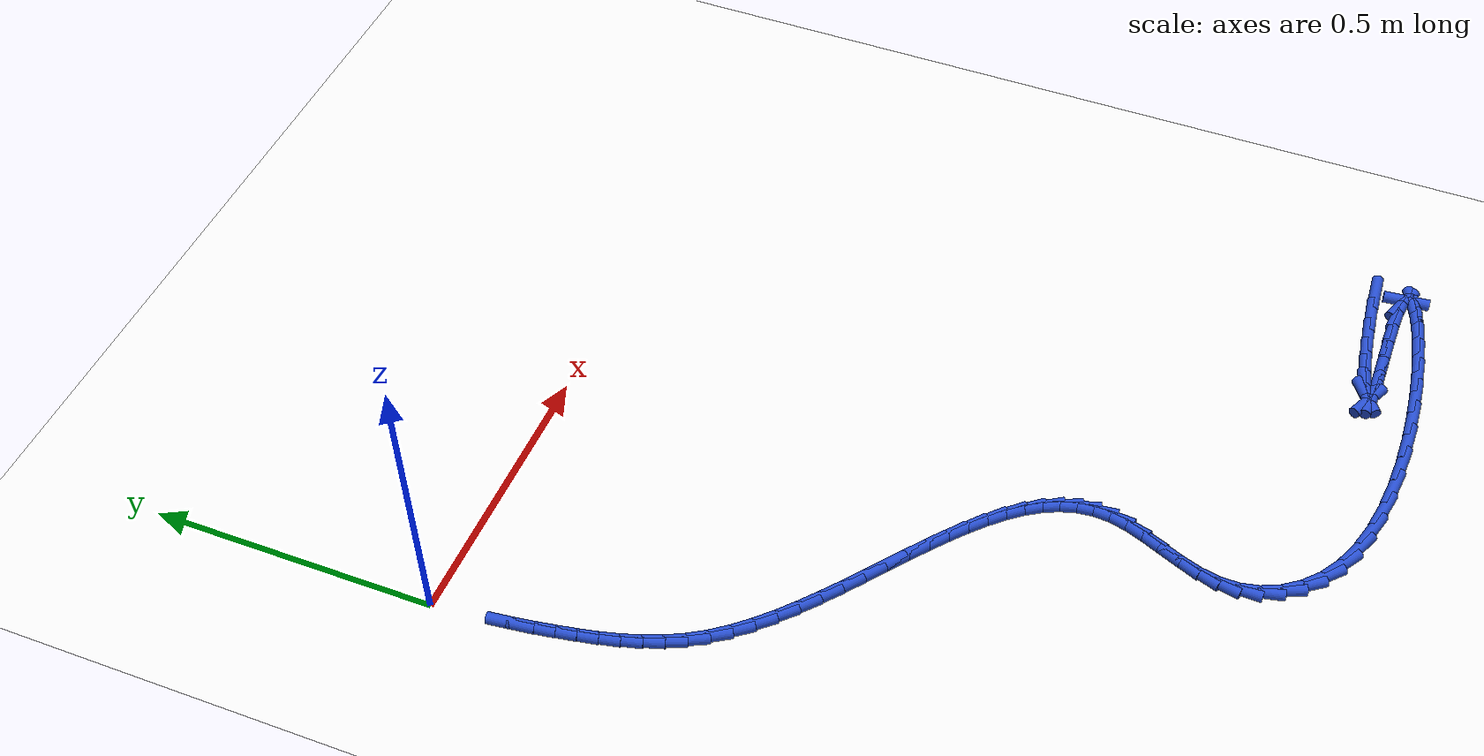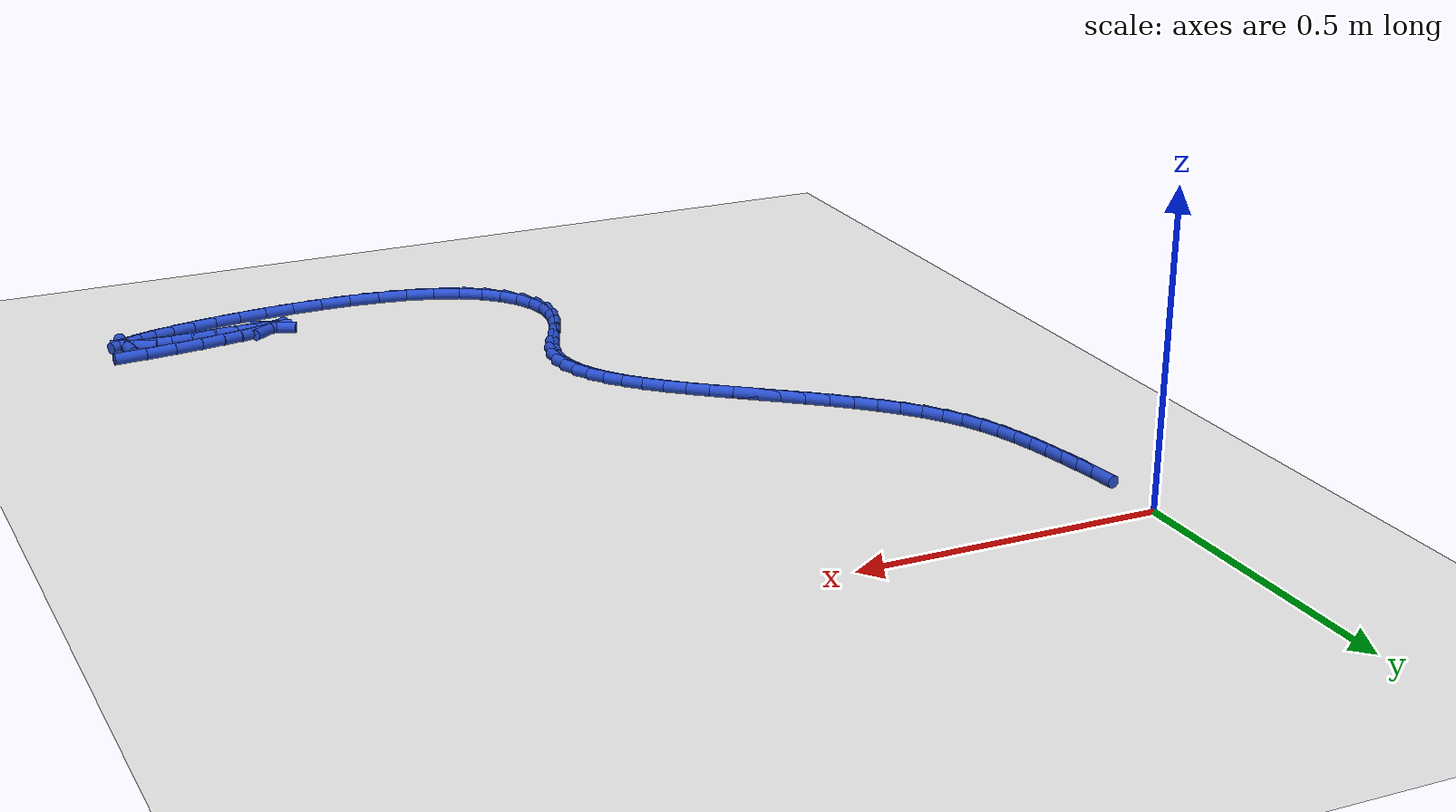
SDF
<sdf version="1.6">
 <world name="default">
  <model name="ground_plane">
   <static>1</static>
   <link name="link">
    <collision name="collision">
     <geometry><plane><normal>0 0 1</normal><size>100 100</size></plane></geometry>
     <surface><friction><ode><mu>100</mu><mu2>50</mu2></ode></friction></surface>
    </collision>
    <visual name="visual">
     <cast_shadows>0</cast_shadows>
     <geometry><plane><normal>0 0 1</normal><size>100 100</size></plane></geometry>
     <material>
      <script><uri>file://media/materials/scripts/gazebo.material</uri><name>Gazebo/WhiteGlow</name></script>
     </material>
    </visual>
   </link>
  </model>
  <model name="line">
   <link name="link_213">
    <pose>1.220874988721453 -1.24283731549988 0.01 0 1.57 0.08131778931943666</pose>
    <collision name="collision">
     <geometry><cylinder><radius>0.01</radius><length>0.08</length></cylinder></geometry>
    </collision>
    <visual name="visual">
     <material>
      <script><name>Gazebo/Blue</name><uri>file://media/materials/scripts/gazebo.material</uri></script>
     </material>
     <geometry><cylinder><radius>0.01</radius><length>0.08</length></cylinder></geometry>
    </visual>
   </link>
   <link name="link_214">
    <pose>1.1660167533138235 -1.2473081248085267 0.01 0 1.57 0.1132822878683919</pose>
    <collision name="collision">
     <geometry><cylinder><radius>0.01</radius><length>0.08</length></cylinder></geometry>
    </collision>
    <visual name="visual">
     <material>
      <script><name>Gazebo/Blue</name><uri>file://media/materials/scripts/gazebo.material</uri></script>
     </material>
     <geometry><cylinder><radius>0.01</radius><length>0.08</length></cylinder></geometry>
    </visual>
   </link>
   <link name="link_215">
    <pose>1.114137619845196 -1.2532103810090196 0.01 0 1.57 0.1440404286201586</pose>
    <collision name="collision">
     <geometry><cylinder><radius>0.01</radius><length>0.08</length></cylinder></geometry>
    </collision>
    <visual name="visual">
     <material>
      <script><name>Gazebo/Blue</name><uri>file://media/materials/scripts/gazebo.material</uri></script>
     </material>
     <geometry><cylinder><radius>0.01</radius><length>0.08</length></cylinder></geometry>
    </visual>
   </link>
   <link name="link_216">
    <pose>1.0672043556969106 -1.260017813136752 0.01 0 1.57 0.17767235977627896</pose>
    <collision name="collision">
     <geometry><cylinder><radius>0.01</radius><length>0.08</length></cylinder></geometry>
    </collision>
    <visual name="visual">
     <material>
      <script><name>Gazebo/Blue</name><uri>file://media/materials/scripts/gazebo.material</uri></script>
     </material>
     <geometry><cylinder><radius>0.01</radius><length>0.08</length></cylinder></geometry>
    </visual>
   </link>
   <link name="link_217">
    <pose>1.027183728250304 -1.2672041502271214 0.01 0 1.57 0.2222982721175687</pose>
    <collision name="collision">
     <geometry><cylinder><radius>0.01</radius><length>0.08</length></cylinder></geometry>
    </collision>
    <visual name="visual">
     <material>
      <script><name>Gazebo/Blue</name><uri>file://media/materials/scripts/gazebo.material</uri></script>
     </material>
     <geometry><cylinder><radius>0.01</radius><length>0.08</length></cylinder></geometry>
    </visual>
   </link>
   <link name="link_218">
    <pose>0.9960425048867168 -1.2742431213155223 0.01 0 1.57 0.30392284036792616</pose>
    <collision name="collision">
     <geometry><cylinder><radius>0.01</radius><length>0.08</length></cylinder></geometry>
    </collision>
    <visual name="visual">
     <material>
      <script><name>Gazebo/Blue</name><uri>file://media/materials/scripts/gazebo.material</uri></script>
     </material>
     <geometry><cylinder><radius>0.01</radius><length>0.08</length></cylinder></geometry>
    </visual>
   </link>
   <link name="link_219">
    <pose>0.9757474529874883 -1.28060845543735 0.01 0 1.57 0.6042335774943872</pose>
    <collision name="collision">
     <geometry><cylinder><radius>0.01</radius><length>0.08</length></cylinder></geometry>
    </collision>
    <visual name="visual">
     <material>
      <script><name>Gazebo/Blue</name><uri>file://media/materials/scripts/gazebo.material</uri></script>
     </material>
     <geometry><cylinder><radius>0.01</radius><length>0.08</length></cylinder></geometry>
    </visual>
   </link>
   <link name="link_220">
    <pose>0.9682653399339578 -1.2857738816279998 0.01 0 1.57 -0.440906104849582</pose>
    <collision name="collision">
     <geometry><cylinder><radius>0.01</radius><length>0.08</length></cylinder></geometry>
    </collision>
    <visual name="visual">
     <material>
      <script><name>Gazebo/Blue</name><uri>file://media/materials/scripts/gazebo.material</uri></script>
     </material>
     <geometry><cylinder><radius>0.01</radius><length>0.08</length></cylinder></geometry>
    </visual>
   </link>
   <link name="link_221">
    <pose>0.9755562301096051 -1.2892143646916583 0.01 0 1.57 -0.0675896060745146</pose>
    <collision name="collision">
     <geometry><cylinder><radius>0.01</radius><length>0.08</length></cylinder></geometry>
    </collision>
    <visual name="visual">
     <material>
      <script><name>Gazebo/Blue</name><uri>file://media/materials/scripts/gazebo.material</uri></script>
     </material>
     <geometry><cylinder><radius>0.01</radius><length>0.08</length></cylinder></geometry>
    </visual>
   </link>
   <link name="link_222">
    <pose>0.9978514177253873 -1.290723586560558 0.01 0 1.57 -0.0033678489611784837</pose>
    <collision name="collision">
     <geometry><cylinder><radius>0.01</radius><length>0.08</length></cylinder></geometry>
    </collision>
    <visual name="visual">
     <material>
      <script><name>Gazebo/Blue</name><uri>file://media/materials/scripts/gazebo.material</uri></script>
     </material>
     <geometry><cylinder><radius>0.01</radius><length>0.08</length></cylinder></geometry>
    </visual>
   </link>
   <link name="link_223">
    <pose>1.0313617314217893 -1.2908364446624236 0.01 0 1.57 0.015939709849880596</pose>
    <collision name="collision">
     <geometry><cylinder><radius>0.01</radius><length>0.08</length></cylinder></geometry>
    </collision>
    <visual name="visual">
     <material>
      <script><name>Gazebo/Blue</name><uri>file://media/materials/scripts/gazebo.material</uri></script>
     </material>
     <geometry><cylinder><radius>0.01</radius><length>0.08</length></cylinder></geometry>
    </visual>
   </link>
   <link name="link_224">
    <pose>1.0717277529339209 -1.2901929674937886 0.01 0 1.57 0.017724298104022766</pose>
    <collision name="collision">
     <geometry><cylinder><radius>0.01</radius><length>0.08</length></cylinder></geometry>
    </collision>
    <visual name="visual">
     <material>
      <script><name>Gazebo/Blue</name><uri>file://media/materials/scripts/gazebo.material</uri></script>
     </material>
     <geometry><cylinder><radius>0.01</radius><length>0.08</length></cylinder></geometry>
    </visual>
   </link>
   <link name="link_225">
    <pose>1.1145900639968915 -1.2894331835511847 0.01 0 1.57 0.005757666323217832</pose>
    <collision name="collision">
     <geometry><cylinder><radius>0.01</radius><length>0.08</length></cylinder></geometry>
    </collision>
    <visual name="visual">
     <material>
      <script><name>Gazebo/Blue</name><uri>file://media/materials/scripts/gazebo.material</uri></script>
     </material>
     <geometry><cylinder><radius>0.01</radius><length>0.08</length></cylinder></geometry>
    </visual>
   </link>
   <link name="link_226">
    <pose>1.1555892463458115 -1.2891971213311448 0.01 0 1.57 -0.026669286408463774</pose>
    <collision name="collision">
     <geometry><cylinder><radius>0.01</radius><length>0.08</length></cylinder></geometry>
    </collision>
    <visual name="visual">
     <material>
      <script><name>Gazebo/Blue</name><uri>file://media/materials/scripts/gazebo.material</uri></script>
     </material>
     <geometry><cylinder><radius>0.01</radius><length>0.08</length></cylinder></geometry>
    </visual>
   </link>
   <link name="link_227">
    <pose>1.19036588171579 -1.2901248093302011 0.01 0 1.57 -0.11137380995772429</pose>
    <collision name="collision">
     <geometry><cylinder><radius>0.01</radius><length>0.08</length></cylinder></geometry>
    </collision>
    <visual name="visual">
     <material>
      <script><name>Gazebo/Blue</name><uri>file://media/materials/scripts/gazebo.material</uri></script>
     </material>
     <geometry><cylinder><radius>0.01</radius><length>0.08</length></cylinder></geometry>
    </visual>
   </link>
   <link name="link_228">
    <pose>1.214645506308491 -1.2928401601046093 0.01 0 1.57 -0.37180535038948553</pose>
    <collision name="collision">
     <geometry><cylinder><radius>0.01</radius><length>0.08</length></cylinder></geometry>
    </collision>
    <visual name="visual">
     <material>
      <script><name>Gazebo/Blue</name><uri>file://media/materials/scripts/gazebo.material</uri></script>
     </material>
     <geometry><cylinder><radius>0.01</radius><length>0.08</length></cylinder></geometry>
    </visual>
   </link>
   <link name="link_229">
    <pose>1.226602240199648 -1.2975025876024218 0.01 0 1.57 -1.4801573033365745</pose>
    <collision name="collision">
     <geometry><cylinder><radius>0.01</radius><length>0.08</length></cylinder></geometry>
    </collision>
    <visual name="visual">
     <material>
      <script><name>Gazebo/Blue</name><uri>file://media/materials/scripts/gazebo.material</uri></script>
     </material>
     <geometry><cylinder><radius>0.01</radius><length>0.08</length></cylinder></geometry>
    </visual>
   </link>
   <link name="link_231">
    <pose>1.2174296451738922 -1.3111843096238152 0.01 0 1.57 0.40962616927655593</pose>
    <collision name="collision">
     <geometry><cylinder><radius>0.01</radius><length>0.08</length></cylinder></geometry>
    </collision>
    <visual name="visual">
     <material>
      <script><name>Gazebo/Blue</name><uri>file://media/materials/scripts/gazebo.material</uri></script>
     </material>
     <geometry><cylinder><radius>0.01</radius><length>0.08</length></cylinder></geometry>
    </visual>
   </link>
   <link name="link_232">
    <pose>1.19846279699756 -1.319419465267473 0.01 0 1.57 0.3085654104358982</pose>
    <collision name="collision">
     <geometry><cylinder><radius>0.01</radius><length>0.08</length></cylinder></geometry>
    </collision>
    <visual name="visual">
     <material>
      <script><name>Gazebo/Blue</name><uri>file://media/materials/scripts/gazebo.material</uri></script>
     </material>
     <geometry><cylinder><radius>0.01</radius><length>0.08</length></cylinder></geometry>
    </visual>
   </link>
   <link name="link_233">
    <pose>1.171350568872644 -1.3280613914131538 0.01 0 1.57 0.2480753416629657</pose>
    <collision name="collision">
     <geometry><cylinder><radius>0.01</radius><length>0.08</length></cylinder></geometry>
    </collision>
    <visual name="visual">
     <material>
      <script><name>Gazebo/Blue</name><uri>file://media/materials/scripts/gazebo.material</uri></script>
     </material>
     <geometry><cylinder><radius>0.01</radius><length>0.08</length></cylinder></geometry>
    </visual>
   </link>
   <link name="link_234">
    <pose>1.1371742011694341 -1.3367180186208982 0.01 0 1.57 0.20331214142457593</pose>
    <collision name="collision">
     <geometry><cylinder><radius>0.01</radius><length>0.08</length></cylinder></geometry>
    </collision>
    <visual name="visual">
     <material>
      <script><name>Gazebo/Blue</name><uri>file://media/materials/scripts/gazebo.material</uri></script>
     </material>
     <geometry><cylinder><radius>0.01</radius><length>0.08</length></cylinder></geometry>
    </visual>
   </link>
   <link name="link_235">
    <pose>1.0970149342582198 -1.3449972774507435 0.01 0 1.57 0.1651414811057617</pose>
    <collision name="collision">
     <geometry><cylinder><radius>0.01</radius><length>0.08</length></cylinder></geometry>
    </collision>
    <visual name="visual">
     <material>
      <script><name>Gazebo/Blue</name><uri>file://media/materials/scripts/gazebo.material</uri></script>
     </material>
     <geometry><cylinder><radius>0.01</radius><length>0.08</length></cylinder></geometry>
    </visual>
   </link>
   <link name="link_236">
    <pose>1.0519540085092907 -1.352507098462727 0.01 0 1.57 0.12914904510541012</pose>
    <collision name="collision">
     <geometry><cylinder><radius>0.01</radius><length>0.08</length></cylinder></geometry>
    </collision>
    <visual name="visual">
     <material>
      <script><name>Gazebo/Blue</name><uri>file://media/materials/scripts/gazebo.material</uri></script>
     </material>
     <geometry><cylinder><radius>0.01</radius><length>0.08</length></cylinder></geometry>
    </visual>
   </link>
   <link name="link_237">
    <pose>1.0030726642929373 -1.3588554122168874 0.01 0 1.57 0.09261857346260761</pose>
    <collision name="collision">
     <geometry><cylinder><radius>0.01</radius><length>0.08</length></cylinder></geometry>
    </collision>
    <visual name="visual">
     <material>
      <script><name>Gazebo/Blue</name><uri>file://media/materials/scripts/gazebo.material</uri></script>
     </material>
     <geometry><cylinder><radius>0.01</radius><length>0.08</length></cylinder></geometry>
    </visual>
   </link>
   <link name="link_238">
    <pose>0.9514521419794486 -1.3636501492732633 0.01 0 1.57 0.05342458825119435</pose>
    <collision name="collision">
     <geometry><cylinder><radius>0.01</radius><length>0.08</length></cylinder></geometry>
    </collision>
    <visual name="visual">
     <material>
      <script><name>Gazebo/Blue</name><uri>file://media/materials/scripts/gazebo.material</uri></script>
     </material>
     <geometry><cylinder><radius>0.01</radius><length>0.08</length></cylinder></geometry>
    </visual>
   </link>
   <link name="link_239">
    <pose>0.8981736819391146 -1.3664992401918914 0.01 0 1.57 0.009495097545759695</pose>
    <collision name="collision">
     <geometry><cylinder><radius>0.01</radius><length>0.08</length></cylinder></geometry>
    </collision>
    <visual name="visual">
     <material>
      <script><name>Gazebo/Blue</name><uri>file://media/materials/scripts/gazebo.material</uri></script>
     </material>
     <geometry><cylinder><radius>0.01</radius><length>0.08</length></cylinder></geometry>
    </visual>
   </link>
   <link name="link_240">
    <pose>0.844318524542225 -1.3670106155328108 0.01 0 1.57 -0.041557767521368354</pose>
    <collision name="collision">
     <geometry><cylinder><radius>0.01</radius><length>0.08</length></cylinder></geometry>
    </collision>
    <visual name="visual">
     <material>
      <script><name>Gazebo/Blue</name><uri>file://media/materials/scripts/gazebo.material</uri></script>
     </material>
     <geometry><cylinder><radius>0.01</radius><length>0.08</length></cylinder></geometry>
    </visual>
   </link>
   <link name="link_241">
    <pose>0.7909679101590695 -1.3647922058560593 0.01 0 1.57 -0.10280027920671866</pose>
    <collision name="collision">
     <geometry><cylinder><radius>0.01</radius><length>0.08</length></cylinder></geometry>
    </collision>
    <visual name="visual">
     <material>
      <script><name>Gazebo/Blue</name><uri>file://media/materials/scripts/gazebo.material</uri></script>
     </material>
     <geometry><cylinder><radius>0.01</radius><length>0.08</length></cylinder></geometry>
    </visual>
   </link>
   <link name="link_242">
    <pose>0.7392030791599378 -1.3594519417216746 0.01 0 1.57 -0.17842006817085465</pose>
    <collision name="collision">
     <geometry><cylinder><radius>0.01</radius><length>0.08</length></cylinder></geometry>
    </collision>
    <visual name="visual">
     <material>
      <script><name>Gazebo/Blue</name><uri>file://media/materials/scripts/gazebo.material</uri></script>
     </material>
     <geometry><cylinder><radius>0.01</radius><length>0.08</length></cylinder></geometry>
    </visual>
   </link>
   <link name="link_243">
    <pose>0.6901052719151197 -1.3505977536896951 0.01 0 1.57 -0.27428233786237016</pose>
    <collision name="collision">
     <geometry><cylinder><radius>0.01</radius><length>0.08</length></cylinder></geometry>
    </collision>
    <visual name="visual">
     <material>
      <script><name>Gazebo/Blue</name><uri>file://media/materials/scripts/gazebo.material</uri></script>
     </material>
     <geometry><cylinder><radius>0.01</radius><length>0.08</length></cylinder></geometry>
    </visual>
   </link>
   <link name="link_244">
    <pose>0.6447557287949051 -1.3378375723201592 0.01 0 1.57 -0.3984632296851204</pose>
    <collision name="collision">
     <geometry><cylinder><radius>0.01</radius><length>0.08</length></cylinder></geometry>
    </collision>
    <visual name="visual">
     <material>
      <script><name>Gazebo/Blue</name><uri>file://media/materials/scripts/gazebo.material</uri></script>
     </material>
     <geometry><cylinder><radius>0.01</radius><length>0.08</length></cylinder></geometry>
    </visual>
   </link>
   <link name="link_245">
    <pose>0.6042356901695836 -1.3207793281731046 0.01 0 1.57 -0.5584427951097375</pose>
    <collision name="collision">
     <geometry><cylinder><radius>0.01</radius><length>0.08</length></cylinder></geometry>
    </collision>
    <visual name="visual">
     <material>
      <script><name>Gazebo/Blue</name><uri>file://media/materials/scripts/gazebo.material</uri></script>
     </material>
     <geometry><cylinder><radius>0.01</radius><length>0.08</length></cylinder></geometry>
    </visual>
   </link>
   <link name="link_246">
    <pose>0.5695707305020719 -1.299121272850991 0.01 0 1.57 -0.7396605734464824</pose>
    <collision name="collision">
     <geometry><cylinder><radius>0.01</radius><length>0.08</length></cylinder></geometry>
    </collision>
    <visual name="visual">
     <material>
      <script><name>Gazebo/Blue</name><uri>file://media/materials/scripts/gazebo.material</uri></script>
     </material>
     <geometry><cylinder><radius>0.01</radius><length>0.08</length></cylinder></geometry>
    </visual>
   </link>
   <link name="link_247">
    <pose>0.5413101588771901 -1.2733344251211238 0.01 0 1.57 -0.9326162791098324</pose>
    <collision name="collision">
     <geometry><cylinder><radius>0.01</radius><length>0.08</length></cylinder></geometry>
    </collision>
    <visual name="visual">
     <material>
      <script><name>Gazebo/Blue</name><uri>file://media/materials/scripts/gazebo.material</uri></script>
     </material>
     <geometry><cylinder><radius>0.01</radius><length>0.08</length></cylinder></geometry>
    </visual>
   </link>
   <link name="link_248">
    <pose>0.5197615054424813 -1.2442821035745442 0.01 0 1.57 -1.1379935399169157</pose>
    <collision name="collision">
     <geometry><cylinder><radius>0.01</radius><length>0.08</length></cylinder></geometry>
    </collision>
    <visual name="visual">
     <material>
      <script><name>Gazebo/Blue</name><uri>file://media/materials/scripts/gazebo.material</uri></script>
     </material>
     <geometry><cylinder><radius>0.01</radius><length>0.08</length></cylinder></geometry>
    </visual>
   </link>
   <link name="link_249">
    <pose>0.5052304027867598 -1.2128307056972636 0.01 0 1.57 -1.355651223245817</pose>
    <collision name="collision">
     <geometry><cylinder><radius>0.01</radius><length>0.08</length></cylinder></geometry>
    </collision>
    <visual name="visual">
     <material>
      <script><name>Gazebo/Blue</name><uri>file://media/materials/scripts/gazebo.material</uri></script>
     </material>
     <geometry><cylinder><radius>0.01</radius><length>0.08</length></cylinder></geometry>
    </visual>
   </link>
   <link name="link_250">
    <pose>0.49802248349884193 -1.1798466289752954 0.01 0 1.57 1.5595070660560961</pose>
    <collision name="collision">
     <geometry><cylinder><radius>0.01</radius><length>0.08</length></cylinder></geometry>
    </collision>
    <visual name="visual">
     <material>
      <script><name>Gazebo/Blue</name><uri>file://media/materials/scripts/gazebo.material</uri></script>
     </material>
     <geometry><cylinder><radius>0.01</radius><length>0.08</length></cylinder></geometry>
    </visual>
   </link>
   <link name="link_251">
    <pose>0.49840250231733446 -1.1461860835233233 0.01 0 1.57 1.3639966349501524</pose>
    <collision name="collision">
     <geometry><cylinder><radius>0.01</radius><length>0.08</length></cylinder></geometry>
    </collision>
    <visual name="visual">
     <material>
      <script><name>Gazebo/Blue</name><uri>file://media/materials/scripts/gazebo.material</uri></script>
     </material>
     <geometry><cylinder><radius>0.01</radius><length>0.08</length></cylinder></geometry>
    </visual>
   </link>
   <link name="link_252">
    <pose>0.5054867876100868 -1.112419074437367 0.01 0 1.57 1.2378461629029758</pose>
    <collision name="collision">
     <geometry><cylinder><radius>0.01</radius><length>0.08</length></cylinder></geometry>
    </collision>
    <visual name="visual">
     <material>
      <script><name>Gazebo/Blue</name><uri>file://media/materials/scripts/gazebo.material</uri></script>
     </material>
     <geometry><cylinder><radius>0.01</radius><length>0.08</length></cylinder></geometry>
    </visual>
   </link>
   <link name="link_253">
    <pose>0.5171140533216647 -1.0787972062009437 0.01 0 1.57 1.1736643224091123</pose>
    <collision name="collision">
     <geometry><cylinder><radius>0.01</radius><length>0.08</length></cylinder></geometry>
    </collision>
    <visual name="visual">
     <material>
      <script><name>Gazebo/Blue</name><uri>file://media/materials/scripts/gazebo.material</uri></script>
     </material>
     <geometry><cylinder><radius>0.01</radius><length>0.08</length></cylinder></geometry>
    </visual>
   </link>
   <link name="link_254">
    <pose>0.5310562058578117 -1.0455554338602342 0.01 0 1.57 1.1647123514247026</pose>
    <collision name="collision">
     <geometry><cylinder><radius>0.01</radius><length>0.08</length></cylinder></geometry>
    </collision>
    <visual name="visual">
     <material>
      <script><name>Gazebo/Blue</name><uri>file://media/materials/scripts/gazebo.material</uri></script>
     </material>
     <geometry><cylinder><radius>0.01</radius><length>0.08</length></cylinder></geometry>
    </visual>
   </link>
   <link name="link_255">
    <pose>0.5450851516242707 -1.012928712461419 0.01 0 1.57 1.2128155889213619</pose>
    <collision name="collision">
     <geometry><cylinder><radius>0.01</radius><length>0.08</length></cylinder></geometry>
    </collision>
    <visual name="visual">
     <material>
      <script><name>Gazebo/Blue</name><uri>file://media/materials/scripts/gazebo.material</uri></script>
     </material>
     <geometry><cylinder><radius>0.01</radius><length>0.08</length></cylinder></geometry>
    </visual>
   </link>
   <link name="link_256">
    <pose>0.5569727970267849 -0.9811519970506789 0.01 0 1.57 1.3302571455392402</pose>
    <collision name="collision">
     <geometry><cylinder><radius>0.01</radius><length>0.08</length></cylinder></geometry>
    </collision>
    <visual name="visual">
     <material>
      <script><name>Gazebo/Blue</name><uri>file://media/materials/scripts/gazebo.material</uri></script>
     </material>
     <geometry><cylinder><radius>0.01</radius><length>0.08</length></cylinder></geometry>
    </visual>
   </link>
   <link name="link_257">
    <pose>0.5645014605344961 -0.9504588695213457 0.01 0 1.57 1.507788034327623</pose>
    <collision name="collision">
     <geometry><cylinder><radius>0.01</radius><length>0.08</length></cylinder></geometry>
    </collision>
    <visual name="visual">
     <material>
      <script><name>Gazebo/Blue</name><uri>file://media/materials/scripts/gazebo.material</uri></script>
     </material>
     <geometry><cylinder><radius>0.01</radius><length>0.08</length></cylinder></geometry>
    </visual>
   </link>
   <link name="link_258">
    <pose>0.5663624057678633 -0.9209630392135101 0.01 0 1.57 -1.4477045876002432</pose>
    <collision name="collision">
     <geometry><cylinder><radius>0.01</radius><length>0.08</length></cylinder></geometry>
    </collision>
    <visual name="visual">
     <material>
      <script><name>Gazebo/Blue</name><uri>file://media/materials/scripts/gazebo.material</uri></script>
     </material>
     <geometry><cylinder><radius>0.01</radius><length>0.08</length></cylinder></geometry>
    </visual>
   </link>
   <link name="link_259">
    <pose>0.562849313120098 -0.8925668872153576 0.01 0 1.57 -1.2724762758522152</pose>
    <collision name="collision">
     <geometry><cylinder><radius>0.01</radius><length>0.08</length></cylinder></geometry>
    </collision>
    <visual name="visual">
     <material>
      <script><name>Gazebo/Blue</name><uri>file://media/materials/scripts/gazebo.material</uri></script>
     </material>
     <geometry><cylinder><radius>0.01</radius><length>0.08</length></cylinder></geometry>
    </visual>
   </link>
   <link name="link_260">
    <pose>0.5544191054971735 -0.8651512660368381 0.01 0 1.57 -1.1188671456697914</pose>
    <collision name="collision">
     <geometry><cylinder><radius>0.01</radius><length>0.08</length></cylinder></geometry>
    </collision>
    <visual name="visual">
     <material>
      <script><name>Gazebo/Blue</name><uri>file://media/materials/scripts/gazebo.material</uri></script>
     </material>
     <geometry><cylinder><radius>0.01</radius><length>0.08</length></cylinder></geometry>
    </visual>
   </link>
   <link name="link_261">
    <pose>0.5415287058050628 -0.8385970281879009 0.01 0 1.57 -0.9912719331878026</pose>
    <collision name="collision">
     <geometry><cylinder><radius>0.01</radius><length>0.08</length></cylinder></geometry>
    </collision>
    <visual name="visual">
     <material>
      <script><name>Gazebo/Blue</name><uri>file://media/materials/scripts/gazebo.material</uri></script>
     </material>
     <geometry><cylinder><radius>0.01</radius><length>0.08</length></cylinder></geometry>
    </visual>
   </link>
   <link name="link_262">
    <pose>0.5246350369497395 -0.8127850261784956 0.01 0 1.57 -0.8891012899613994</pose>
    <collision name="collision">
     <geometry><cylinder><radius>0.01</radius><length>0.08</length></cylinder></geometry>
    </collision>
    <visual name="visual">
     <material>
      <script><name>Gazebo/Blue</name><uri>file://media/materials/scripts/gazebo.material</uri></script>
     </material>
     <geometry><cylinder><radius>0.01</radius><length>0.08</length></cylinder></geometry>
    </visual>
   </link>
   <link name="link_263">
    <pose>0.5041950218371771 -0.7875961125185719 0.01 0 1.57 -0.8093601518886673</pose>
    <collision name="collision">
     <geometry><cylinder><radius>0.01</radius><length>0.08</length></cylinder></geometry>
    </collision>
    <visual name="visual">
     <material>
      <script><name>Gazebo/Blue</name><uri>file://media/materials/scripts/gazebo.material</uri></script>
     </material>
     <geometry><cylinder><radius>0.01</radius><length>0.08</length></cylinder></geometry>
    </visual>
   </link>
   <link name="link_264">
    <pose>0.4806655833733489 -0.7629111397180794 0.01 0 1.57 -0.7485206898134</pose>
    <collision name="collision">
     <geometry><cylinder><radius>0.01</radius><length>0.08</length></cylinder></geometry>
    </collision>
    <visual name="visual">
     <material>
      <script><name>Gazebo/Blue</name><uri>file://media/materials/scripts/gazebo.material</uri></script>
     </material>
     <geometry><cylinder><radius>0.01</radius><length>0.08</length></cylinder></geometry>
    </visual>
   </link>
   <link name="link_265">
    <pose>0.4545036444642291 -0.7386109602869686 0.01 0 1.57 -0.7034204786437808</pose>
    <collision name="collision">
     <geometry><cylinder><radius>0.01</radius><length>0.08</length></cylinder></geometry>
    </collision>
    <visual name="visual">
     <material>
      <script><name>Gazebo/Blue</name><uri>file://media/materials/scripts/gazebo.material</uri></script>
     </material>
     <geometry><cylinder><radius>0.01</radius><length>0.08</length></cylinder></geometry>
    </visual>
   </link>
   <link name="link_266">
    <pose>0.4261661280157893 -0.7145764267351874 0.01 0 1.57 -0.6715497276018227</pose>
    <collision name="collision">
     <geometry><cylinder><radius>0.01</radius><length>0.08</length></cylinder></geometry>
    </collision>
    <visual name="visual">
     <material>
      <script><name>Gazebo/Blue</name><uri>file://media/materials/scripts/gazebo.material</uri></script>
     </material>
     <geometry><cylinder><radius>0.01</radius><length>0.08</length></cylinder></geometry>
    </visual>
   </link>
   <link name="link_267">
    <pose>0.3961099569340039 -0.690688391572686 0.01 0 1.57 -0.6510651042875709</pose>
    <collision name="collision">
     <geometry><cylinder><radius>0.01</radius><length>0.08</length></cylinder></geometry>
    </collision>
    <visual name="visual">
     <material>
      <script><name>Gazebo/Blue</name><uri>file://media/materials/scripts/gazebo.material</uri></script>
     </material>
     <geometry><cylinder><radius>0.01</radius><length>0.08</length></cylinder></geometry>
    </visual>
   </link>
   <link name="link_268">
    <pose>0.36479205412484605 -0.6668277073094143 0.01 0 1.57 -0.640714910651018</pose>
    <collision name="collision">
     <geometry><cylinder><radius>0.01</radius><length>0.08</length></cylinder></geometry>
    </collision>
    <visual name="visual">
     <material>
      <script><name>Gazebo/Blue</name><uri>file://media/materials/scripts/gazebo.material</uri></script>
     </material>
     <geometry><cylinder><radius>0.01</radius><length>0.08</length></cylinder></geometry>
    </visual>
   </link>
   <link name="link_269">
    <pose>0.33266934249428937 -0.642875226455322 0.01 0 1.57 -0.6397551021271453</pose>
    <collision name="collision">
     <geometry><cylinder><radius>0.01</radius><length>0.08</length></cylinder></geometry>
    </collision>
    <visual name="visual">
     <material>
      <script><name>Gazebo/Blue</name><uri>file://media/materials/scripts/gazebo.material</uri></script>
     </material>
     <geometry><cylinder><radius>0.01</radius><length>0.08</length></cylinder></geometry>
    </visual>
   </link>
   <link name="link_270">
    <pose>0.30019874494830695 -0.6187118015203582 0.01 0 1.57 -0.6478838650326669</pose>
    <collision name="collision">
     <geometry><cylinder><radius>0.01</radius><length>0.08</length></cylinder></geometry>
    </collision>
    <visual name="visual">
     <material>
      <script><name>Gazebo/Blue</name><uri>file://media/materials/scripts/gazebo.material</uri></script>
     </material>
     <geometry><cylinder><radius>0.01</radius><length>0.08</length></cylinder></geometry>
    </visual>
   </link>
   <link name="link_271">
    <pose>0.26783718439287246 -0.5942182850144733 0.01 0 1.57 -0.6652006168086899</pose>
    <collision name="collision">
     <geometry><cylinder><radius>0.01</radius><length>0.08</length></cylinder></geometry>
    </collision>
    <visual name="visual">
     <material>
      <script><name>Gazebo/Blue</name><uri>file://media/materials/scripts/gazebo.material</uri></script>
     </material>
     <geometry><cylinder><radius>0.01</radius><length>0.08</length></cylinder></geometry>
    </visual>
   </link>
   <link name="link_272">
    <pose>0.23604158373395906 -0.5692755294476162 0.01 0 1.57 -0.6921862095202745</pose>
    <collision name="collision">
     <geometry><cylinder><radius>0.01</radius><length>0.08</length></cylinder></geometry>
    </collision>
    <visual name="visual">
     <material>
      <script><name>Gazebo/Blue</name><uri>file://media/materials/scripts/gazebo.material</uri></script>
     </material>
     <geometry><cylinder><radius>0.01</radius><length>0.08</length></cylinder></geometry>
    </visual>
   </link>
   <link name="link_273">
    <pose>0.20526886587754029 -0.5437643873297369 0.01 0 1.57 -0.7296953955061849</pose>
    <collision name="collision">
     <geometry><cylinder><radius>0.01</radius><length>0.08</length></cylinder></geometry>
    </collision>
    <visual name="visual">
     <material>
      <script><name>Gazebo/Blue</name><uri>file://media/materials/scripts/gazebo.material</uri></script>
     </material>
     <geometry><cylinder><radius>0.01</radius><length>0.08</length></cylinder></geometry>
    </visual>
   </link>
   <link name="link_274">
    <pose>0.17597595372958932 -0.5175657111707845 0.01 0 1.57 -0.7789446860824232</pose>
    <collision name="collision">
     <geometry><cylinder><radius>0.01</radius><length>0.08</length></cylinder></geometry>
    </collision>
    <visual name="visual">
     <material>
      <script><name>Gazebo/Blue</name><uri>file://media/materials/scripts/gazebo.material</uri></script>
     </material>
     <geometry><cylinder><radius>0.01</radius><length>0.08</length></cylinder></geometry>
    </visual>
   </link>
   <link name="link_275">
    <pose>0.1486197701960797 -0.49056035348070914 0.01 0 1.57 -0.8414642437549271</pose>
    <collision name="collision">
     <geometry><cylinder><radius>0.01</radius><length>0.08</length></cylinder></geometry>
    </collision>
    <visual name="visual">
     <material>
      <script><name>Gazebo/Blue</name><uri>file://media/materials/scripts/gazebo.material</uri></script>
     </material>
     <geometry><cylinder><radius>0.01</radius><length>0.08</length></cylinder></geometry>
    </visual>
   </link>
   <link name="link_276">
    <pose>0.12365723818298478 -0.46262916676946036 0.01 0 1.57 -0.9189584033742785</pose>
    <collision name="collision">
     <geometry><cylinder><radius>0.01</radius><length>0.08</length></cylinder></geometry>
    </collision>
    <visual name="visual">
     <material>
      <script><name>Gazebo/Blue</name><uri>file://media/materials/scripts/gazebo.material</uri></script>
     </material>
     <geometry><cylinder><radius>0.01</radius><length>0.08</length></cylinder></geometry>
    </visual>
   </link>
   <link name="link_277">
    <pose>0.10154528059627786 -0.43365300354698755 0.01 0 1.57 -1.0122956266799477</pose>
    <collision name="collision">
     <geometry><cylinder><radius>0.01</radius><length>0.08</length></cylinder></geometry>
    </collision>
    <visual name="visual">
     <material>
      <script><name>Gazebo/Blue</name><uri>file://media/materials/scripts/gazebo.material</uri></script>
     </material>
     <geometry><cylinder><radius>0.01</radius><length>0.08</length></cylinder></geometry>
    </visual>
   </link>
   <link name="link_278">
    <pose>0.08271670305674271 -0.40352066828782296 0.01 0 1.57 -1.1082813325926013</pose>
    <collision name="collision">
     <geometry><cylinder><radius>0.01</radius><length>0.08</length></cylinder></geometry>
    </collision>
    <visual name="visual">
     <material>
      <script><name>Gazebo/Blue</name><uri>file://media/materials/scripts/gazebo.material</uri></script>
     </material>
     <geometry><cylinder><radius>0.01</radius><length>0.08</length></cylinder></geometry>
    </visual>
   </link>
   <link name="link_279">
    <pose>0.06713794834254562 -0.37227473488034535 0.01 0 1.57 -1.1926131293073798</pose>
    <collision name="collision">
     <geometry><cylinder><radius>0.01</radius><length>0.08</length></cylinder></geometry>
    </collision>
    <visual name="visual">
     <material>
      <script><name>Gazebo/Blue</name><uri>file://media/materials/scripts/gazebo.material</uri></script>
     </material>
     <geometry><cylinder><radius>0.01</radius><length>0.08</length></cylinder></geometry>
    </visual>
   </link>
   <link name="link_280">
    <pose>0.05435345758895557 -0.34009691982752627 0.01 0 1.57 -1.2631431225350263</pose>
    <collision name="collision">
     <geometry><cylinder><radius>0.01</radius><length>0.08</length></cylinder></geometry>
    </collision>
    <visual name="visual">
     <material>
      <script><name>Gazebo/Blue</name><uri>file://media/materials/scripts/gazebo.material</uri></script>
     </material>
     <geometry><cylinder><radius>0.01</radius><length>0.08</length></cylinder></geometry>
    </visual>
   </link>
   <link name="link_281">
    <pose>0.043892454682754316 -0.30717395707190326 0.01 0 1.57 -1.3191401314329891</pose>
    <collision name="collision">
     <geometry><cylinder><radius>0.01</radius><length>0.08</length></cylinder></geometry>
    </collision>
    <visual name="visual">
     <material>
      <script><name>Gazebo/Blue</name><uri>file://media/materials/scripts/gazebo.material</uri></script>
     </material>
     <geometry><cylinder><radius>0.01</radius><length>0.08</length></cylinder></geometry>
    </visual>
   </link>
   <link name="link_282">
    <pose>0.03528416351072486 -0.2736925805560173 0.01 0 1.57 -1.3604902695991679</pose>
    <collision name="collision">
     <geometry><cylinder><radius>0.01</radius><length>0.08</length></cylinder></geometry>
    </collision>
    <visual name="visual">
     <material>
      <script><name>Gazebo/Blue</name><uri>file://media/materials/scripts/gazebo.material</uri></script>
     </material>
     <geometry><cylinder><radius>0.01</radius><length>0.08</length></cylinder></geometry>
    </visual>
   </link>
   <link name="link_283">
    <pose>0.028057807959649742 -0.23983952422240795 0.01 0 1.57 -1.3874045212508541</pose>
    <collision name="collision">
     <geometry><cylinder><radius>0.01</radius><length>0.08</length></cylinder></geometry>
    </collision>
    <visual name="visual">
     <material>
      <script><name>Gazebo/Blue</name><uri>file://media/materials/scripts/gazebo.material</uri></script>
     </material>
     <geometry><cylinder><radius>0.01</radius><length>0.08</length></cylinder></geometry>
    </visual>
   </link>
   <link name="link_284">
    <pose>0.021744461857747217 -0.2058008773386423 0.01 0 1.57 -1.4056807039975132</pose>
    <collision name="collision">
     <geometry><cylinder><radius>0.01</radius><length>0.08</length></cylinder></geometry>
    </collision>
    <visual name="visual">
     <material>
      <script><name>Gazebo/Blue</name><uri>file://media/materials/scripts/gazebo.material</uri></script>
     </material>
     <geometry><cylinder><radius>0.01</radius><length>0.08</length></cylinder></geometry>
    </visual>
   </link>
   <link name="link_285">
    <pose>0.0160617601435523 -0.17169771561219424 0.01 0 1.57 -1.4257548903830075</pose>
    <collision name="collision">
     <geometry><cylinder><radius>0.01</radius><length>0.08</length></cylinder></geometry>
    </collision>
    <visual name="visual">
     <material>
      <script><name>Gazebo/Blue</name><uri>file://media/materials/scripts/gazebo.material</uri></script>
     </material>
     <geometry><cylinder><radius>0.01</radius><length>0.08</length></cylinder></geometry>
    </visual>
   </link>
   <link name="link_286">
    <pose>0.011071168552116917 -0.13753129522269958 0.01 0 1.57 -1.4487478605689328</pose>
    <collision name="collision">
     <geometry><cylinder><radius>0.01</radius><length>0.08</length></cylinder></geometry>
    </collision>
    <visual name="visual">
     <material>
      <script><name>Gazebo/Blue</name><uri>file://media/materials/scripts/gazebo.material</uri></script>
     </material>
     <geometry><cylinder><radius>0.01</radius><length>0.08</length></cylinder></geometry>
    </visual>
   </link>
  </model>
 </world>
</sdf>
